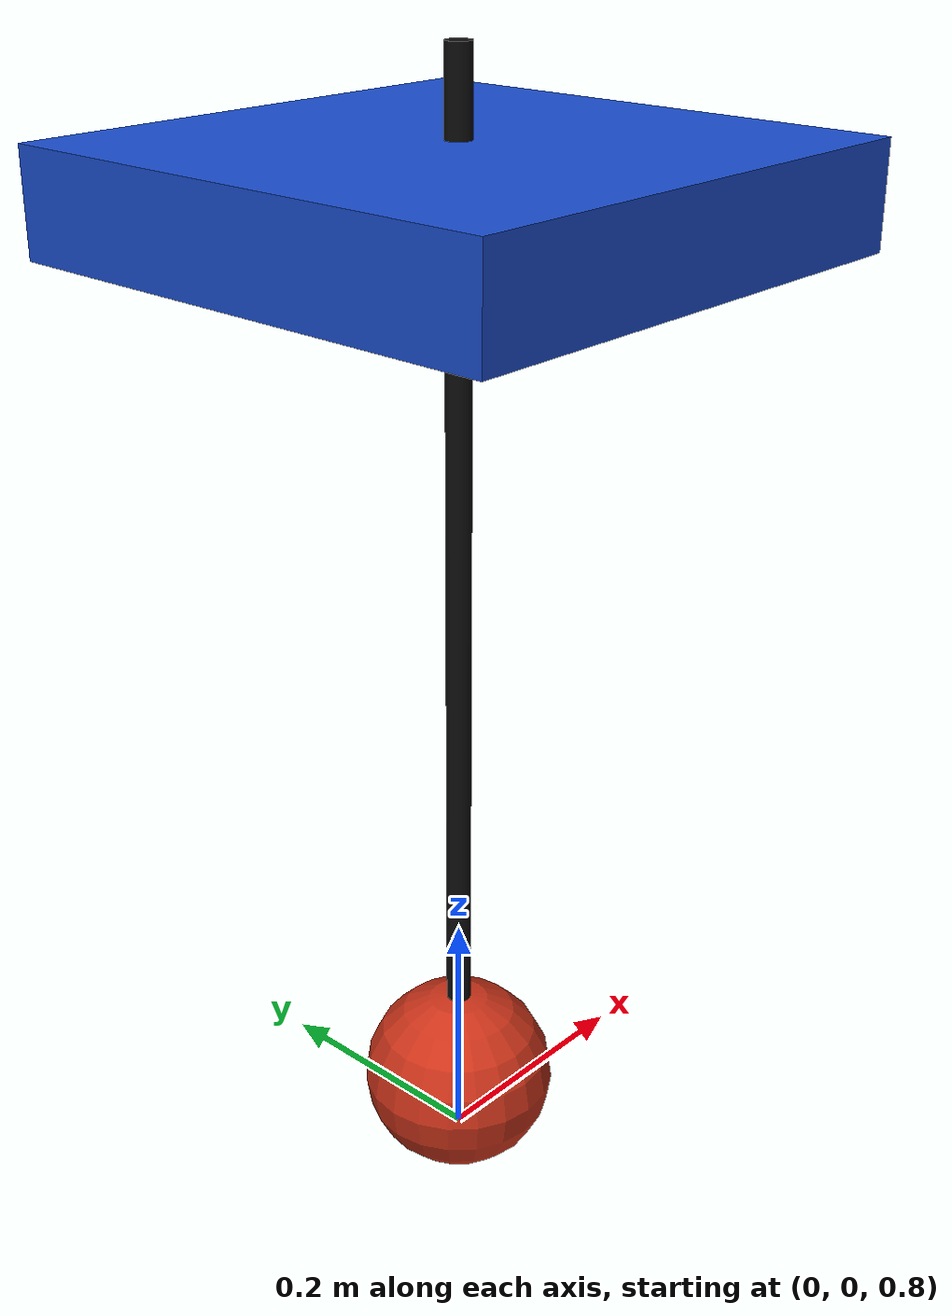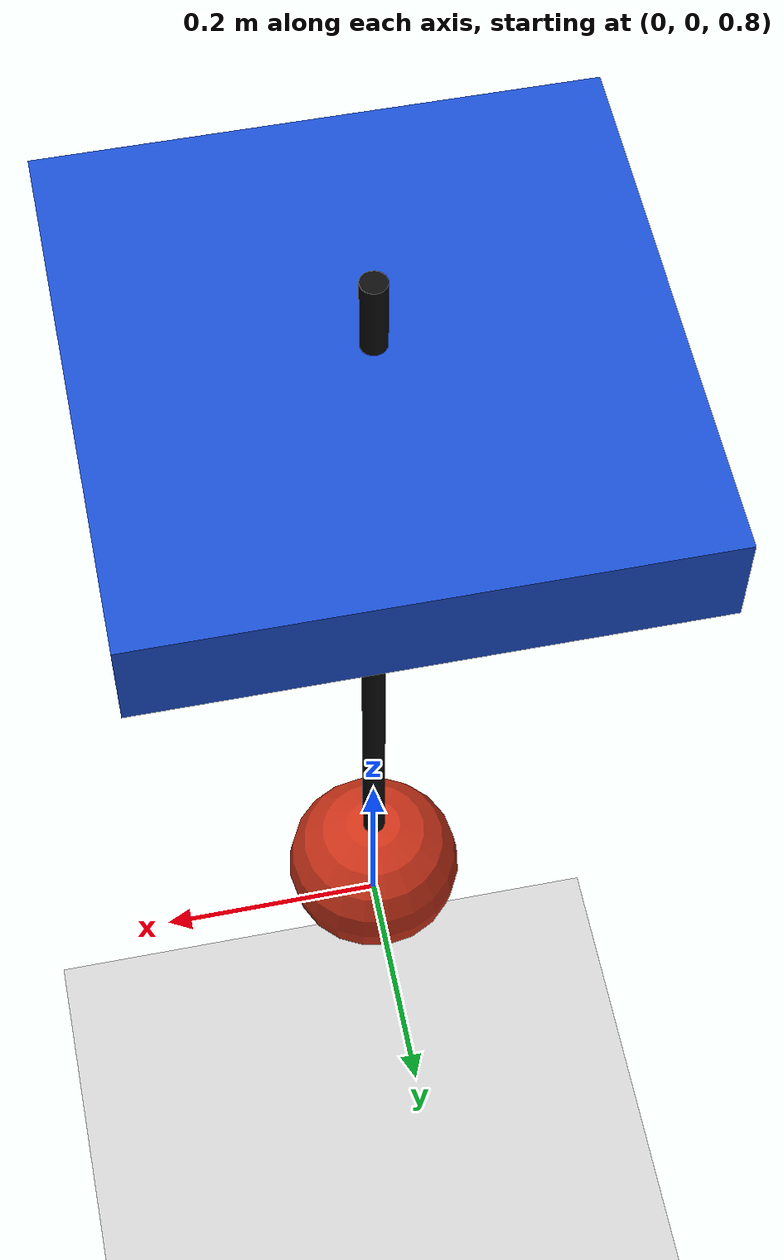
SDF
<?xml version="1.0"?>
<sdf version="1.6">
  <world name="sls_circle_force">
    <!-- 简化 Gazebo 烟测 world：验证外力闭环和吊载响应，不包含 PX4 内环或电机模型。 -->
    <include>
      <uri>model://ground_plane</uri>
    </include>
    <include>
      <uri>model://sun</uri>
    </include>

    <physics name="ode_physics" type="ode">
      <!-- 较小步长用于减轻吊载关节数值发散，CPU 负载会比普通空世界更高。 -->
      <max_step_size>0.002</max_step_size>
      <real_time_update_rate>500</real_time_update_rate>
      <real_time_factor>1.0</real_time_factor>
    </physics>

    <model name="sls_circle_drone">
      <pose>0 0 1.6 0 0 0</pose>
      <link name="base_link">
        <!-- base_link 代表无人机本体，质量要和控制器 mav_mass/bridge_mass 保持一致。 -->
        <inertial>
          <mass>1.56</mass>
          <inertia>
            <ixx>0.018</ixx>
            <iyy>0.018</iyy>
            <izz>0.030</izz>
            <ixy>0.0</ixy>
            <ixz>0.0</ixz>
            <iyz>0.0</iyz>
          </inertia>
        </inertial>
        <collision name="collision">
          <geometry>
            <sphere>
              <radius>0.18</radius>
            </sphere>
          </geometry>
        </collision>
        <visual name="body">
          <geometry>
            <box>
              <size>0.42 0.42 0.08</size>
            </box>
          </geometry>
          <material>
            <ambient>0.1 0.3 0.8 1</ambient>
            <diffuse>0.1 0.3 0.8 1</diffuse>
          </material>
        </visual>
        <velocity_decay>
          <linear>0.01</linear>
          <angular>0.01</angular>
        </velocity_decay>
      </link>

      <link name="pendulum">
        <!-- pendulum 是轻质量吊绳近似，用 universal joint 提供两个方向摆动自由度。 -->
        <pose>0 0 -0.32 0 0 0</pose>
        <inertial>
          <mass>0.01</mass>
          <inertia>
            <ixx>0.00060208</ixx>
            <iyy>0.00060208</iyy>
            <izz>0.000000005</izz>
            <ixy>0.0</ixy>
            <ixz>0.0</ixz>
            <iyz>0.0</iyz>
          </inertia>
        </inertial>
        <visual name="pendulum_visual">
          <geometry>
            <cylinder>
              <radius>0.01</radius>
              <length>0.85</length>
            </cylinder>
          </geometry>
          <material>
            <ambient>0.05 0.05 0.05 1</ambient>
            <diffuse>0.05 0.05 0.05 1</diffuse>
          </material>
        </visual>
        <velocity_decay>
          <linear>0.01</linear>
          <angular>0.02</angular>
        </velocity_decay>
      </link>

      <link name="load">
        <!-- load 是吊载球，质量要和控制器 load_mass 对齐。 -->
        <pose>0 0 -0.745 0 0 0</pose>
        <inertial>
          <mass>0.25</mass>
          <inertia>
            <ixx>0.0000625</ixx>
            <iyy>0.0000625</iyy>
            <izz>0.0000625</izz>
            <ixy>0.0</ixy>
            <ixz>0.0</ixz>
            <iyz>0.0</iyz>
          </inertia>
        </inertial>
        <collision name="load_collision">
          <geometry>
            <sphere>
              <radius>0.08</radius>
            </sphere>
          </geometry>
        </collision>
        <visual name="load_visual">
          <geometry>
            <sphere>
              <radius>0.08</radius>
            </sphere>
          </geometry>
          <material>
            <ambient>0.8 0.2 0.1 1</ambient>
            <diffuse>0.8 0.2 0.1 1</diffuse>
          </material>
        </visual>
        <velocity_decay>
          <linear>0.01</linear>
          <angular>0.02</angular>
        </velocity_decay>
      </link>

      <joint name="load_joint" type="ball">
        <parent>pendulum</parent>
        <child>load</child>
        <pose>0 0 0 0 0 0</pose>
      </joint>

      <joint name="pendulum_joint" type="universal">
        <!-- universal joint 用两个互相垂直的转轴模拟绳摆，阻尼过低会让烟测更容易发散。 -->
        <parent>base_link</parent>
        <child>pendulum</child>
        <pose>0 0 0.425 0 0 0</pose>
        <axis>
          <xyz>1 0 0</xyz>
          <dynamics>
            <damping>0.08</damping>
            <friction>0.0</friction>
          </dynamics>
        </axis>
        <axis2>
          <xyz>0 1 0</xyz>
          <dynamics>
            <damping>0.08</damping>
            <friction>0.0</friction>
          </dynamics>
        </axis2>
      </joint>

      <plugin name="gazebo_ros_p3d" filename="libgazebo_ros_p3d.so">
        <!-- 发布机体 odom，桥接节点再转成 /mavros/local_position/*。 -->
        <ros>
          <remapping>odom:=/sls_circle/gazebo_odom</remapping>
        </ros>
        <body_name>base_link</body_name>
        <update_rate>200</update_rate>
        <xyz_offset>0 0 0</xyz_offset>
        <rpy_offset>0 0 0</rpy_offset>
        <gaussian_noise>0.0</gaussian_noise>
      </plugin>

      <plugin name="gazebo_ros_p3d_load" filename="libgazebo_ros_p3d.so">
        <!-- 发布负载 odom，use_load_pose=true 时控制器会把它用于 QSF 状态估计。 -->
        <ros>
          <remapping>odom:=/sls_circle/gazebo_load_odom</remapping>
        </ros>
        <body_name>load</body_name>
        <update_rate>200</update_rate>
        <xyz_offset>0 0 0</xyz_offset>
        <rpy_offset>0 0 0</rpy_offset>
        <gaussian_noise>0.0</gaussian_noise>
      </plugin>

      <plugin name="gazebo_ros_force" filename="libgazebo_ros_force.so">
        <!-- 接收 /sls_circle/gazebo_force，在世界系对 base_link 直接施加合力。 -->
        <ros>
          <remapping>gazebo_ros_force:=/sls_circle/gazebo_force</remapping>
        </ros>
        <link_name>base_link</link_name>
        <force_frame>world</force_frame>
      </plugin>
    </model>
  </world>
</sdf>
